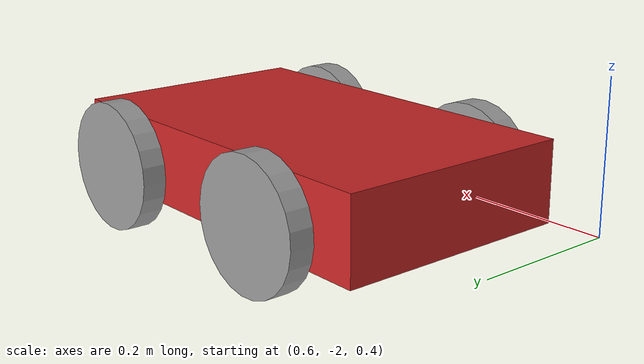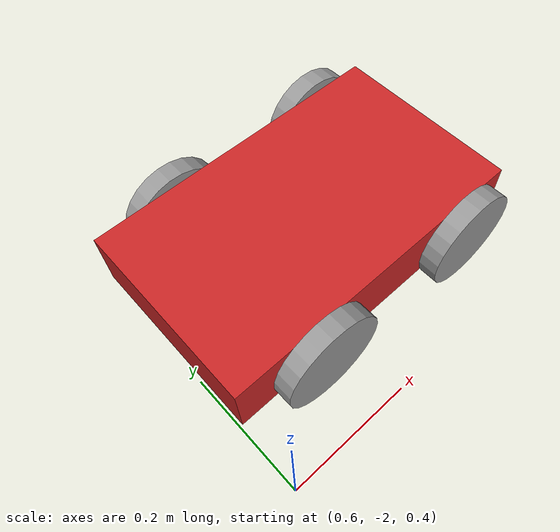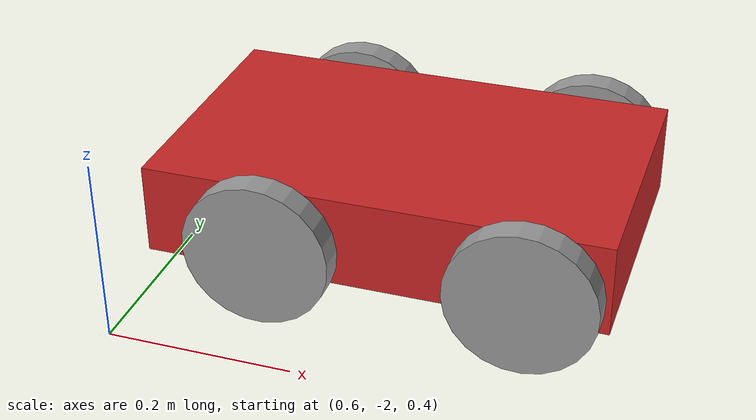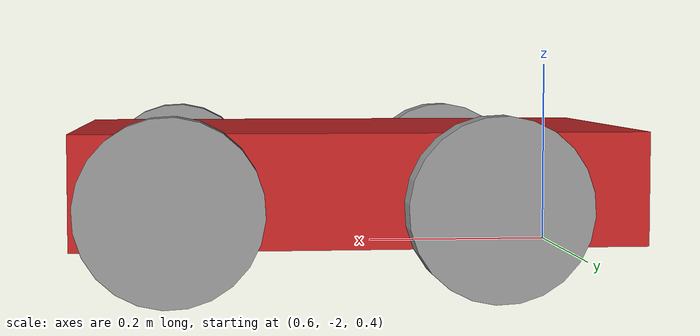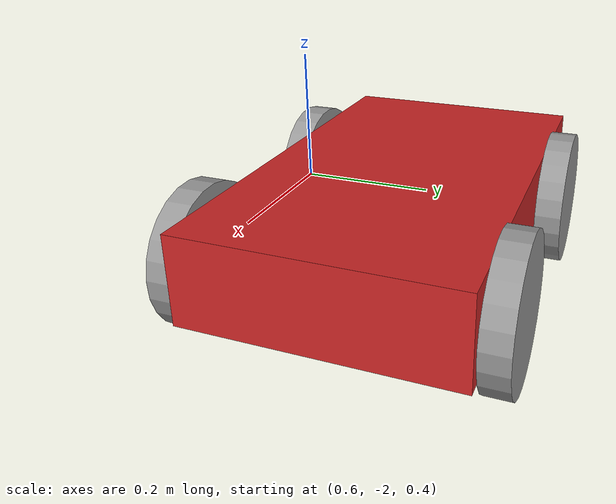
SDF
<?xml version='1.0'?>
<sdf version='1.6'>
  <model name='Myrobot'>
    <link name='link_0'>
      <inertial>
        <mass>1</mass>
        <inertia>
          <ixx>0.166667</ixx>
          <ixy>0</ixy>
          <ixz>0</ixz>
          <iyy>0.166667</iyy>
          <iyz>0</iyz>
          <izz>0.166667</izz>
        </inertia>
        <pose frame=''>0 0 0 0 -0 0</pose>
      </inertial>
      <pose frame=''>0.849321 -1.74976 0.49289 0 -0 0</pose>
      <gravity>1</gravity>
      <self_collide>0</self_collide>
      <kinematic>0</kinematic>
      <enable_wind>0</enable_wind>
      <visual name='visual'>
        <pose frame=''>0 0 0 0 -0 0</pose>
        <geometry>
          <box>
            <size>0.5 0.3 0.1</size>
          </box>
        </geometry>
        <material>
          <lighting>1</lighting>
          <script>
            <uri>file://media/materials/scripts/gazebo.material</uri>
            <name>Gazebo/Red</name>
          </script>
          <shader type='vertex'>
            <normal_map>__default__</normal_map>
          </shader>
          <ambient>1 0 0 1</ambient>
          <diffuse>0.9 0 0 1</diffuse>
          <specular>1 0 0 1</specular>
          <emissive>0 0 0 1</emissive>
        </material>
        <transparency>0</transparency>
        <cast_shadows>1</cast_shadows>
      </visual>
      <collision name='collision'>
        <laser_retro>0</laser_retro>
        <max_contacts>10</max_contacts>
        <pose frame=''>0 0 0 0 -0 0</pose>
        <geometry>
          <box>
            <size>0.5 0.3 0.1</size>
          </box>
        </geometry>
        <surface>
          <friction>
            <ode>
              <mu>1</mu>
              <mu2>1</mu2>
              <fdir1>0 0 0</fdir1>
              <slip1>0</slip1>
              <slip2>0</slip2>
            </ode>
            <torsional>
              <coefficient>1</coefficient>
              <patch_radius>0</patch_radius>
              <surface_radius>0</surface_radius>
              <use_patch_radius>1</use_patch_radius>
              <ode>
                <slip>0</slip>
              </ode>
            </torsional>
          </friction>
          <bounce>
            <restitution_coefficient>0</restitution_coefficient>
            <threshold>1e+06</threshold>
          </bounce>
          <contact>
            <collide_without_contact>0</collide_without_contact>
            <collide_without_contact_bitmask>1</collide_without_contact_bitmask>
            <collide_bitmask>1</collide_bitmask>
            <ode>
              <soft_cfm>0</soft_cfm>
              <soft_erp>0.2</soft_erp>
              <kp>1e+13</kp>
              <kd>1</kd>
              <max_vel>0.01</max_vel>
              <min_depth>0</min_depth>
            </ode>
            <bullet>
              <split_impulse>1</split_impulse>
              <split_impulse_penetration_threshold>-0.01</split_impulse_penetration_threshold>
              <soft_cfm>0</soft_cfm>
              <soft_erp>0.2</soft_erp>
              <kp>1e+13</kp>
              <kd>1</kd>
            </bullet>
          </contact>
        </surface>
      </collision>
    </link>

    <link name='link_2_clone_0_clone_0'>
      <inertial>
        <mass>1</mass>
        <inertia>
          <ixx>0.145833</ixx>
          <ixy>0</ixy>
          <ixz>0</ixz>
          <iyy>0.145833</iyy>
          <iyz>0</iyz>
          <izz>0.125</izz>
        </inertia>
        <pose frame=''>0 0 0 0 -0 0</pose>
      </inertial>
      <pose frame=''>0.734849 -1.91514 0.478354 -1.57548 1.5 0</pose>
      <gravity>1</gravity>
      <self_collide>0</self_collide>
      <kinematic>0</kinematic>
      <enable_wind>0</enable_wind>
      <visual name='visual'>
        <pose frame=''>0 0 0 0 -0 0</pose>
        <geometry>
          <cylinder>
            <radius>0.08</radius>
            <length>0.03</length>
          </cylinder>
        </geometry>
        <material>
          <lighting>1</lighting>
          <script>
            <uri>file://media/materials/scripts/gazebo.material</uri>
            <name>Gazebo/Grey</name>
          </script>
          <shader type='vertex'>
            <normal_map>__default__</normal_map>
          </shader>
          <ambient>0.3 0.3 0.3 1</ambient>
          <diffuse>0.7 0.7 0.7 1</diffuse>
          <specular>0.01 0.01 0.01 1</specular>
          <emissive>0 0 0 1</emissive>
        </material>
        <transparency>0</transparency>
        <cast_shadows>1</cast_shadows>
      </visual>
      <collision name='collision'>
        <laser_retro>0</laser_retro>
        <max_contacts>10</max_contacts>
        <pose frame=''>0 0 0 0 -0 0</pose>
        <geometry>
          <cylinder>
            <radius>0.08</radius>
            <length>0.03</length>
          </cylinder>
        </geometry>
        <surface>
          <friction>
            <ode>
              <mu>1</mu>
              <mu2>1</mu2>
              <fdir1>0 0 0</fdir1>
              <slip1>0</slip1>
              <slip2>0</slip2>
            </ode>
            <torsional>
              <coefficient>1</coefficient>
              <patch_radius>0</patch_radius>
              <surface_radius>0</surface_radius>
              <use_patch_radius>1</use_patch_radius>
              <ode>
                <slip>0</slip>
              </ode>
            </torsional>
          </friction>
          <bounce>
            <restitution_coefficient>0</restitution_coefficient>
            <threshold>1e+06</threshold>
          </bounce>
          <contact>
            <collide_without_contact>0</collide_without_contact>
            <collide_without_contact_bitmask>1</collide_without_contact_bitmask>
            <collide_bitmask>1</collide_bitmask>
            <ode>
              <soft_cfm>0</soft_cfm>
              <soft_erp>0.2</soft_erp>
              <kp>1e+13</kp>
              <kd>1</kd>
              <max_vel>0.01</max_vel>
              <min_depth>0</min_depth>
            </ode>
            <bullet>
              <split_impulse>1</split_impulse>
              <split_impulse_penetration_threshold>-0.01</split_impulse_penetration_threshold>
              <soft_cfm>0</soft_cfm>
              <soft_erp>0.2</soft_erp>
              <kp>1e+13</kp>
              <kd>1</kd>
            </bullet>
          </contact>
        </surface>
      </collision>
    </link>
    <link name='link_2_clone_0_clone_0_clone'>
      <inertial>
        <mass>1</mass>
        <inertia>
          <ixx>0.145833</ixx>
          <ixy>0</ixy>
          <ixz>0</ixz>
          <iyy>0.145833</iyy>
          <iyz>0</iyz>
          <izz>0.125</izz>
        </inertia>
        <pose frame=''>0 0 0 0 -0 0</pose>
      </inertial>
      <pose frame=''>1.01379 -1.91514 0.478352 -1.57548 1.5 0</pose>
      <gravity>1</gravity>
      <self_collide>0</self_collide>
      <kinematic>0</kinematic>
      <enable_wind>0</enable_wind>
      <visual name='visual'>
        <pose frame=''>0 0 0 0 -0 0</pose>
        <geometry>
          <cylinder>
            <radius>0.08</radius>
            <length>0.03</length>
          </cylinder>
        </geometry>
        <material>
          <lighting>1</lighting>
          <script>
            <uri>file://media/materials/scripts/gazebo.material</uri>
            <name>Gazebo/Grey</name>
          </script>
          <shader type='vertex'>
            <normal_map>__default__</normal_map>
          </shader>
          <ambient>0.3 0.3 0.3 1</ambient>
          <diffuse>0.7 0.7 0.7 1</diffuse>
          <specular>0.01 0.01 0.01 1</specular>
          <emissive>0 0 0 1</emissive>
        </material>
        <transparency>0</transparency>
        <cast_shadows>1</cast_shadows>
      </visual>
      <collision name='collision'>
        <laser_retro>0</laser_retro>
        <max_contacts>10</max_contacts>
        <pose frame=''>0 0 0 0 -0 0</pose>
        <geometry>
          <cylinder>
            <radius>0.08</radius>
            <length>0.03</length>
          </cylinder>
        </geometry>
        <surface>
          <friction>
            <ode>
              <mu>1</mu>
              <mu2>1</mu2>
              <fdir1>0 0 0</fdir1>
              <slip1>0</slip1>
              <slip2>0</slip2>
            </ode>
            <torsional>
              <coefficient>1</coefficient>
              <patch_radius>0</patch_radius>
              <surface_radius>0</surface_radius>
              <use_patch_radius>1</use_patch_radius>
              <ode>
                <slip>0</slip>
              </ode>
            </torsional>
          </friction>
          <bounce>
            <restitution_coefficient>0</restitution_coefficient>
            <threshold>1e+06</threshold>
          </bounce>
          <contact>
            <collide_without_contact>0</collide_without_contact>
            <collide_without_contact_bitmask>1</collide_without_contact_bitmask>
            <collide_bitmask>1</collide_bitmask>
            <ode>
              <soft_cfm>0</soft_cfm>
              <soft_erp>0.2</soft_erp>
              <kp>1e+13</kp>
              <kd>1</kd>
              <max_vel>0.01</max_vel>
              <min_depth>0</min_depth>
            </ode>
            <bullet>
              <split_impulse>1</split_impulse>
              <split_impulse_penetration_threshold>-0.01</split_impulse_penetration_threshold>
              <soft_cfm>0</soft_cfm>
              <soft_erp>0.2</soft_erp>
              <kp>1e+13</kp>
              <kd>1</kd>
            </bullet>
          </contact>
        </surface>
      </collision>
    </link>
    <link name='link_2_clone_0_clone_0_clone_0'>
      <inertial>
        <mass>1</mass>
        <inertia>
          <ixx>0.145833</ixx>
          <ixy>0</ixy>
          <ixz>0</ixz>
          <iyy>0.145833</iyy>
          <iyz>0</iyz>
          <izz>0.125</izz>
        </inertia>
        <pose frame=''>0 0 0 0 -0 0</pose>
      </inertial>
      <pose frame=''>0.734849 -1.58439 0.478354 -1.57548 1.5 0</pose>
      <gravity>1</gravity>
      <self_collide>0</self_collide>
      <kinematic>0</kinematic>
      <enable_wind>0</enable_wind>
      <visual name='visual'>
        <pose frame=''>0 0 0 0 -0 0</pose>
        <geometry>
          <cylinder>
            <radius>0.08</radius>
            <length>0.03</length>
          </cylinder>
        </geometry>
        <material>
          <lighting>1</lighting>
          <script>
            <uri>file://media/materials/scripts/gazebo.material</uri>
            <name>Gazebo/Grey</name>
          </script>
          <shader type='vertex'>
            <normal_map>__default__</normal_map>
          </shader>
          <ambient>0.3 0.3 0.3 1</ambient>
          <diffuse>0.7 0.7 0.7 1</diffuse>
          <specular>0.01 0.01 0.01 1</specular>
          <emissive>0 0 0 1</emissive>
        </material>
        <transparency>0</transparency>
        <cast_shadows>1</cast_shadows>
      </visual>
      <collision name='collision'>
        <laser_retro>0</laser_retro>
        <max_contacts>10</max_contacts>
        <pose frame=''>0 0 0 0 -0 0</pose>
        <geometry>
          <cylinder>
            <radius>0.08</radius>
            <length>0.03</length>
          </cylinder>
        </geometry>
        <surface>
          <friction>
            <ode>
              <mu>1</mu>
              <mu2>1</mu2>
              <fdir1>0 0 0</fdir1>
              <slip1>0</slip1>
              <slip2>0</slip2>
            </ode>
            <torsional>
              <coefficient>1</coefficient>
              <patch_radius>0</patch_radius>
              <surface_radius>0</surface_radius>
              <use_patch_radius>1</use_patch_radius>
              <ode>
                <slip>0</slip>
              </ode>
            </torsional>
          </friction>
          <bounce>
            <restitution_coefficient>0</restitution_coefficient>
            <threshold>1e+06</threshold>
          </bounce>
          <contact>
            <collide_without_contact>0</collide_without_contact>
            <collide_without_contact_bitmask>1</collide_without_contact_bitmask>
            <collide_bitmask>1</collide_bitmask>
            <ode>
              <soft_cfm>0</soft_cfm>
              <soft_erp>0.2</soft_erp>
              <kp>1e+13</kp>
              <kd>1</kd>
              <max_vel>0.01</max_vel>
              <min_depth>0</min_depth>
            </ode>
            <bullet>
              <split_impulse>1</split_impulse>
              <split_impulse_penetration_threshold>-0.01</split_impulse_penetration_threshold>
              <soft_cfm>0</soft_cfm>
              <soft_erp>0.2</soft_erp>
              <kp>1e+13</kp>
              <kd>1</kd>
            </bullet>
          </contact>
        </surface>
      </collision>
    </link>
    <link name='link_2_clone_0_clone_0_clone_1'>
      <inertial>
        <mass>1</mass>
        <inertia>
          <ixx>0.145833</ixx>
          <ixy>0</ixy>
          <ixz>0</ixz>
          <iyy>0.145833</iyy>
          <iyz>0</iyz>
          <izz>0.125</izz>
        </inertia>
        <pose frame=''>0 0 0 0 -0 0</pose>
      </inertial>
      <pose frame=''>1.01379 -1.58439 0.478352 -1.57548 1.5 0</pose>
      <gravity>1</gravity>
      <self_collide>0</self_collide>
      <kinematic>0</kinematic>
      <enable_wind>0</enable_wind>
      <visual name='visual'>
        <pose frame=''>0 0 0 0 -0 0</pose>
        <geometry>
          <cylinder>
            <radius>0.08</radius>
            <length>0.03</length>
          </cylinder>
        </geometry>
        <material>
          <lighting>1</lighting>
          <script>
            <uri>file://media/materials/scripts/gazebo.material</uri>
            <name>Gazebo/Grey</name>
          </script>
          <shader type='vertex'>
            <normal_map>__default__</normal_map>
          </shader>
          <ambient>0.3 0.3 0.3 1</ambient>
          <diffuse>0.7 0.7 0.7 1</diffuse>
          <specular>0.01 0.01 0.01 1</specular>
          <emissive>0 0 0 1</emissive>
        </material>
        <transparency>0</transparency>
        <cast_shadows>1</cast_shadows>
      </visual>
      <collision name='collision'>
        <laser_retro>0</laser_retro>
        <max_contacts>10</max_contacts>
        <pose frame=''>0 0 0 0 -0 0</pose>
        <geometry>
          <cylinder>
            <radius>0.08</radius>
            <length>0.03</length>
          </cylinder>
        </geometry>
        <surface>
          <friction>
            <ode>
              <mu>1</mu>
              <mu2>1</mu2>
              <fdir1>0 0 0</fdir1>
              <slip1>0</slip1>
              <slip2>0</slip2>
            </ode>
            <torsional>
              <coefficient>1</coefficient>
              <patch_radius>0</patch_radius>
              <surface_radius>0</surface_radius>
              <use_patch_radius>1</use_patch_radius>
              <ode>
                <slip>0</slip>
              </ode>
            </torsional>
          </friction>
          <bounce>
            <restitution_coefficient>0</restitution_coefficient>
            <threshold>1e+06</threshold>
          </bounce>
          <contact>
            <collide_without_contact>0</collide_without_contact>
            <collide_without_contact_bitmask>1</collide_without_contact_bitmask>
            <collide_bitmask>1</collide_bitmask>
            <ode>
              <soft_cfm>0</soft_cfm>
              <soft_erp>0.2</soft_erp>
              <kp>1e+13</kp>
              <kd>1</kd>
              <max_vel>0.01</max_vel>
              <min_depth>0</min_depth>
            </ode>
            <bullet>
              <split_impulse>1</split_impulse>
              <split_impulse_penetration_threshold>-0.01</split_impulse_penetration_threshold>
              <soft_cfm>0</soft_cfm>
              <soft_erp>0.2</soft_erp>
              <kp>1e+13</kp>
              <kd>1</kd>
            </bullet>
          </contact>
        </surface>
      </collision>
    </link>
    <joint name='link_0_JOINT_12' type='revolute'>
      <parent>link_0</parent>
      <child>link_2_clone_0_clone_0_clone</child>
      <pose frame=''>0 0 0 0 -0 0</pose>
      <axis>
        <xyz>0 0 1</xyz>
        <use_parent_model_frame>0</use_parent_model_frame>
        <limit>
          <lower>-1.79769e+308</lower>
          <upper>1.79769e+308</upper>
          <effort>-1</effort>
          <velocity>-1</velocity>
        </limit>
        <dynamics>
          <spring_reference>0</spring_reference>
          <spring_stiffness>0</spring_stiffness>
          <damping>0</damping>
        </dynamics>
      </axis>
      <physics>
        <ode>
          <limit>
            <cfm>0</cfm>
            <erp>0.2</erp>
          </limit>
          <suspension>
            <cfm>0</cfm>
            <erp>0.2</erp>
          </suspension>
        </ode>
      </physics>
    </joint>
    <joint name='link_0_JOINT_13' type='revolute'>
      <parent>link_0</parent>
      <child>link_2_clone_0_clone_0</child>
      <pose frame=''>0 0 0 0 -0 0</pose>
      <axis>
        <xyz>0 0 1</xyz>
        <use_parent_model_frame>0</use_parent_model_frame>
        <limit>
          <lower>-1.79769e+308</lower>
          <upper>1.79769e+308</upper>
          <effort>-1</effort>
          <velocity>-1</velocity>
        </limit>
        <dynamics>
          <spring_reference>0</spring_reference>
          <spring_stiffness>0</spring_stiffness>
          <damping>0</damping>
        </dynamics>
      </axis>
      <physics>
        <ode>
          <limit>
            <cfm>0</cfm>
            <erp>0.2</erp>
          </limit>
          <suspension>
            <cfm>0</cfm>
            <erp>0.2</erp>
          </suspension>
        </ode>
      </physics>
    </joint>
    <joint name='link_0_JOINT_15' type='revolute'>
      <parent>link_0</parent>
      <child>link_2_clone_0_clone_0_clone_1</child>
      <pose frame=''>0 0 0 0 -0 0</pose>
      <axis>
        <xyz>0 0 1</xyz>
        <use_parent_model_frame>0</use_parent_model_frame>
        <limit>
          <lower>-1.79769e+308</lower>
          <upper>1.79769e+308</upper>
          <effort>-1</effort>
          <velocity>-1</velocity>
        </limit>
        <dynamics>
          <spring_reference>0</spring_reference>
          <spring_stiffness>0</spring_stiffness>
          <damping>0</damping>
        </dynamics>
      </axis>
      <physics>
        <ode>
          <limit>
            <cfm>0</cfm>
            <erp>0.2</erp>
          </limit>
          <suspension>
            <cfm>0</cfm>
            <erp>0.2</erp>
          </suspension>
        </ode>
      </physics>
    </joint>
    <joint name='link_0_JOINT_16' type='revolute'>
      <parent>link_0</parent>
      <child>link_2_clone_0_clone_0_clone_0</child>
      <pose frame=''>0 0 0 0 -0 0</pose>
      <axis>
        <xyz>0 0 1</xyz>
        <use_parent_model_frame>0</use_parent_model_frame>
        <limit>
          <lower>-1.79769e+308</lower>
          <upper>1.79769e+308</upper>
          <effort>-1</effort>
          <velocity>-1</velocity>
        </limit>
        <dynamics>
          <spring_reference>0</spring_reference>
          <spring_stiffness>0</spring_stiffness>
          <damping>0</damping>
        </dynamics>
      </axis>
      <physics>
        <ode>
          <limit>
            <cfm>0</cfm>
            <erp>0.2</erp>
          </limit>
          <suspension>
            <cfm>0</cfm>
            <erp>0.2</erp>
          </suspension>
        </ode>
      </physics>
    </joint>
    <joint name='link_0_JOINT_4' type='revolute'>
      <parent>link_0</parent>
      <child>link_2_clone_0_clone_0</child>
      <pose frame=''>0 0 0 0 -0 0</pose>
      <axis>
        <xyz>0 0 1</xyz>
        <use_parent_model_frame>0</use_parent_model_frame>
        <limit>
          <lower>-1.79769e+308</lower>
          <upper>1.79769e+308</upper>
          <effort>-1</effort>
          <velocity>-1</velocity>
        </limit>
        <dynamics>
          <spring_reference>0</spring_reference>
          <spring_stiffness>0</spring_stiffness>
          <damping>0</damping>
        </dynamics>
      </axis>
      <physics>
        <ode>
          <limit>
            <cfm>0</cfm>
            <erp>0.2</erp>
          </limit>
          <suspension>
            <cfm>0</cfm>
            <erp>0.2</erp>
          </suspension>
        </ode>
      </physics>
    </joint>
    <joint name='link_0_JOINT_6' type='revolute'>
      <parent>link_0</parent>
      <child>link_2_clone_0_clone_0_clone_0</child>
      <pose frame=''>0 0 0 0 -0 0</pose>
      <axis>
        <xyz>0 0 1</xyz>
        <use_parent_model_frame>0</use_parent_model_frame>
        <limit>
          <lower>-1.79769e+308</lower>
          <upper>1.79769e+308</upper>
          <effort>-1</effort>
          <velocity>-1</velocity>
        </limit>
        <dynamics>
          <spring_reference>0</spring_reference>
          <spring_stiffness>0</spring_stiffness>
          <damping>0</damping>
        </dynamics>
      </axis>
      <physics>
        <ode>
          <limit>
            <cfm>0</cfm>
            <erp>0.2</erp>
          </limit>
          <suspension>
            <cfm>0</cfm>
            <erp>0.2</erp>
          </suspension>
        </ode>
      </physics>
    </joint>
    <joint name='link_0_JOINT_7' type='revolute'>
      <parent>link_0</parent>
      <child>link_2_clone_0_clone_0_clone_1</child>
      <pose frame=''>0 0 0 0 -0 0</pose>
      <axis>
        <xyz>0 0 1</xyz>
        <use_parent_model_frame>0</use_parent_model_frame>
        <limit>
          <lower>-1.79769e+308</lower>
          <upper>1.79769e+308</upper>
          <effort>-1</effort>
          <velocity>-1</velocity>
        </limit>
        <dynamics>
          <spring_reference>0</spring_reference>
          <spring_stiffness>0</spring_stiffness>
          <damping>0</damping>
        </dynamics>
      </axis>
      <physics>
        <ode>
          <limit>
            <cfm>0</cfm>
            <erp>0.2</erp>
          </limit>
          <suspension>
            <cfm>0</cfm>
            <erp>0.2</erp>
          </suspension>
        </ode>
      </physics>
    </joint>
    <joint name='link_0_JOINT_8' type='revolute'>
      <parent>link_0</parent>
      <child>link_2_clone_0_clone_0_clone</child>
      <pose frame=''>0.01 0 0 0 -0 0</pose>
      <axis>
        <xyz>1 0 0</xyz>
        <use_parent_model_frame>0</use_parent_model_frame>
        <limit>
          <lower>-1.79769e+308</lower>
          <upper>1.79769e+308</upper>
          <effort>-1</effort>
          <velocity>-1</velocity>
        </limit>
        <dynamics>
          <spring_reference>0</spring_reference>
          <spring_stiffness>0</spring_stiffness>
          <damping>0</damping>
        </dynamics>
      </axis>
      <physics>
        <ode>
          <limit>
            <cfm>0</cfm>
            <erp>0.2</erp>
          </limit>
          <suspension>
            <cfm>0</cfm>
            <erp>0.2</erp>
          </suspension>
        </ode>
      </physics>
    </joint>
    <joint name='link_0_JOINT_9' type='revolute'>
      <parent>link_0</parent>
      <child>link_2_clone_0_clone_0</child>
      <pose frame=''>0 0 0 0 -0 0</pose>
      <axis>
        <xyz>0 0 1</xyz>
        <use_parent_model_frame>0</use_parent_model_frame>
        <limit>
          <lower>-1.79769e+308</lower>
          <upper>1.79769e+308</upper>
          <effort>-1</effort>
          <velocity>-1</velocity>
        </limit>
        <dynamics>
          <spring_reference>0</spring_reference>
          <spring_stiffness>0</spring_stiffness>
          <damping>0</damping>
        </dynamics>
      </axis>
      <physics>
        <ode>
          <limit>
            <cfm>0</cfm>
            <erp>0.2</erp>
          </limit>
          <suspension>
            <cfm>0</cfm>
            <erp>0.2</erp>
          </suspension>
        </ode>
      </physics>
    </joint>
    <static>0</static>
    <allow_auto_disable>1</allow_auto_disable>
  </model>
</sdf>
